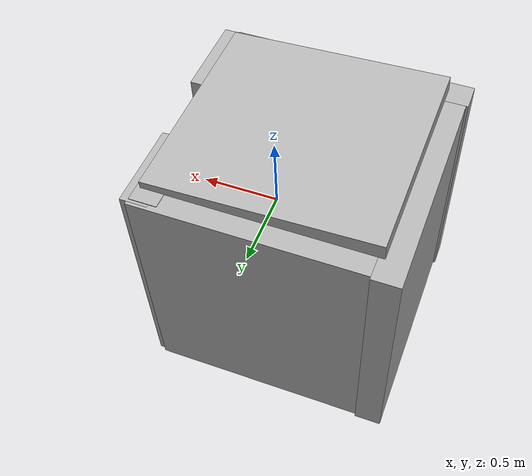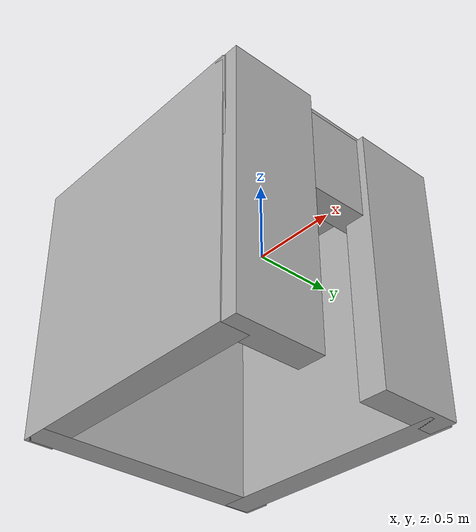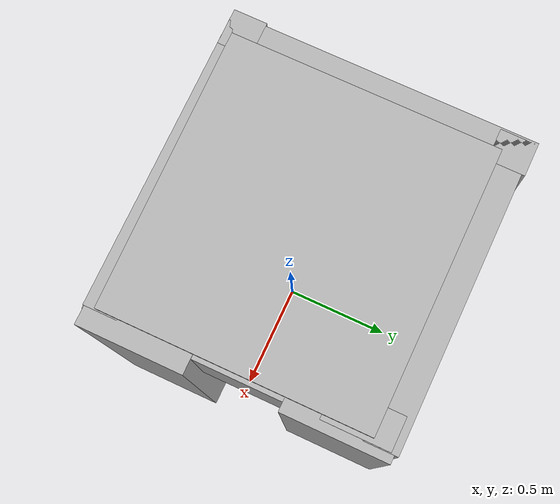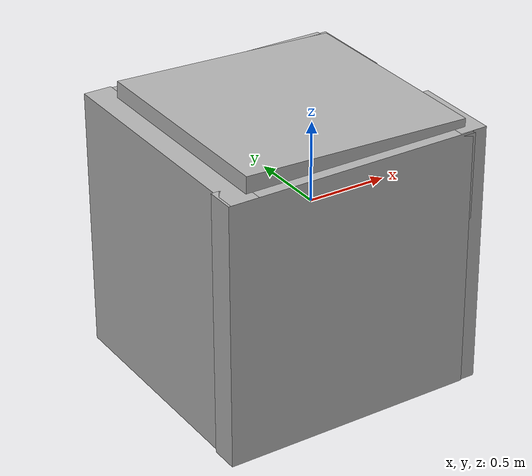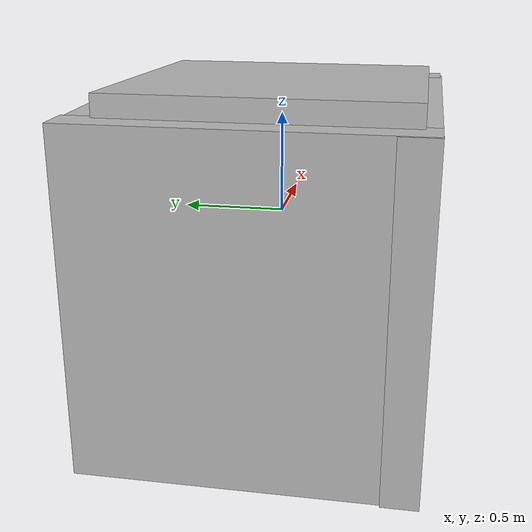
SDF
<?xml version='1.0'?>
<sdf version='1.6'>
  <model name='shelter'>
    <model name='Shelter'>
      <static>1</static>
      <link name='link_0'>
        <pose frame=''>-0.920119 0.015171 -0.190897 0 -0 0</pose>
        <inertial>
          <mass>0.432828</mass>
          <inertia>
            <ixx>0.182499</ixx>
            <ixy>0</ixy>
            <ixz>0</ixz>
            <iyy>0.0956056</iyy>
            <iyz>0</iyz>
            <izz>0.0890079</izz>
          </inertia>
          <pose frame=''>0 0 0 0 -0 0</pose>
        </inertial>
        <visual name='visual'>
          <pose frame=''>0 0 0 0 -0 0</pose>
          <geometry>
            <box>
              <size>0.171105 1.56146 1.61905</size>
            </box>
          </geometry>
          <material>
            <lighting>1</lighting>
            <script>
                <uri>model://shelter/materials/scripts/repeated.material</uri>
              <name>RepeatedTexture</name>
            </script>
            <ambient>0.3 0.3 0.3 1</ambient>
            <diffuse>0.7 0.7 0.7 1</diffuse>
            <specular>0.01 0.01 0.01 1</specular>
            <emissive>0 0 0 1</emissive>
          </material>
          <cast_shadows>1</cast_shadows>
          <transparency>0</transparency>
        </visual>
        <collision name='collision'>
          <laser_retro>0</laser_retro>
          <max_contacts>10</max_contacts>
          <pose frame=''>0 0 0 0 -0 0</pose>
          <geometry>
            <box>
              <size>0.171105 1.56146 1.61905</size>
            </box>
          </geometry>
          <surface>
            <friction>
              <ode>
                <mu>1</mu>
                <mu2>1</mu2>
                <fdir1>0 0 0</fdir1>
                <slip1>0</slip1>
                <slip2>0</slip2>
              </ode>
              <torsional>
                <coefficient>1</coefficient>
                <patch_radius>0</patch_radius>
                <surface_radius>0</surface_radius>
                <use_patch_radius>1</use_patch_radius>
                <ode>
                  <slip>0</slip>
                </ode>
              </torsional>
            </friction>
            <bounce>
              <restitution_coefficient>0</restitution_coefficient>
              <threshold>1e+06</threshold>
            </bounce>
            <contact>
              <collide_without_contact>0</collide_without_contact>
              <collide_without_contact_bitmask>1</collide_without_contact_bitmask>
              <collide_bitmask>1</collide_bitmask>
              <ode>
                <soft_cfm>0</soft_cfm>
                <soft_erp>0.2</soft_erp>
                <kp>1e+13</kp>
                <kd>1</kd>
                <max_vel>0.01</max_vel>
                <min_depth>0</min_depth>
              </ode>
              <bullet>
                <split_impulse>1</split_impulse>
                <split_impulse_penetration_threshold>-0.01</split_impulse_penetration_threshold>
                <soft_cfm>0</soft_cfm>
                <soft_erp>0.2</soft_erp>
                <kp>1e+13</kp>
                <kd>1</kd>
              </bullet>
            </contact>
          </surface>
        </collision>
      </link>
      <link name='link_0_clone'>
        <pose frame=''>-0.21624 0.6946 -0.190897 0 0 -1.57056</pose>
        <inertial>
          <mass>0.432828</mass>
          <inertia>
            <ixx>0.182499</ixx>
            <ixy>0</ixy>
            <ixz>0</ixz>
            <iyy>0.0956056</iyy>
            <iyz>0</iyz>
            <izz>0.0890079</izz>
          </inertia>
          <pose frame=''>0 0 0 0 -0 0</pose>
        </inertial>
        <visual name='visual'>
          <pose frame=''>0 0 0 0 -0 0</pose>
          <geometry>
            <box>
              <size>0.171105 1.56146 1.61905</size>
            </box>
          </geometry>
          <material>
            <lighting>1</lighting>
            <script>
                <uri>model://shelter/materials/scripts/repeated.material</uri>
              <name>RepeatedTexture</name>
            </script>
            <ambient>0.3 0.3 0.3 1</ambient>
            <diffuse>0.7 0.7 0.7 1</diffuse>
            <specular>0.01 0.01 0.01 1</specular>
            <emissive>0 0 0 1</emissive>
            <shader type='pixel'/>
          </material>
          <cast_shadows>1</cast_shadows>
          <transparency>0</transparency>
        </visual>
        <collision name='collision'>
          <laser_retro>0</laser_retro>
          <max_contacts>10</max_contacts>
          <pose frame=''>0 0 0 0 -0 0</pose>
          <geometry>
            <box>
              <size>0.171105 1.56146 1.61905</size>
            </box>
          </geometry>
          <surface>
            <friction>
              <ode>
                <mu>1</mu>
                <mu2>1</mu2>
                <fdir1>0 0 0</fdir1>
                <slip1>0</slip1>
                <slip2>0</slip2>
              </ode>
              <torsional>
                <coefficient>1</coefficient>
                <patch_radius>0</patch_radius>
                <surface_radius>0</surface_radius>
                <use_patch_radius>1</use_patch_radius>
                <ode>
                  <slip>0</slip>
                </ode>
              </torsional>
            </friction>
            <bounce>
              <restitution_coefficient>0</restitution_coefficient>
              <threshold>1e+06</threshold>
            </bounce>
            <contact>
              <collide_without_contact>0</collide_without_contact>
              <collide_without_contact_bitmask>1</collide_without_contact_bitmask>
              <collide_bitmask>1</collide_bitmask>
              <ode>
                <soft_cfm>0</soft_cfm>
                <soft_erp>0.2</soft_erp>
                <kp>1e+13</kp>
                <kd>1</kd>
                <max_vel>0.01</max_vel>
                <min_depth>0</min_depth>
              </ode>
              <bullet>
                <split_impulse>1</split_impulse>
                <split_impulse_penetration_threshold>-0.01</split_impulse_penetration_threshold>
                <soft_cfm>0</soft_cfm>
                <soft_erp>0.2</soft_erp>
                <kp>1e+13</kp>
                <kd>1</kd>
              </bullet>
            </contact>
          </surface>
        </collision>
      </link>
      <link name='link_0_clone_0'>
        <pose frame=''>-0.169587 -0.024586 0.608475 0 -1.53496 0</pose>
        <inertial>
          <mass>0.325147</mass>
          <inertia>
            <ixx>0.103015</ixx>
            <ixy>0</ixy>
            <ixz>0</ixz>
            <iyy>0.0544996</iyy>
            <iyz>0</iyz>
            <izz>0.0501041</izz>
          </inertia>
          <pose frame=''>0 0 0 0 -0 0</pose>
        </inertial>
        <visual name='visual'>
          <pose frame=''>0 0 0 0 -0 0</pose>
          <geometry>
            <box>
              <size>0.171105 1.34895 1.40786</size>
            </box>
          </geometry>
          <material>
            <lighting>1</lighting>
            <script>
                <uri>model://shelter/materials/scripts/repeated.material</uri>
              <name>RepeatedTexture</name>
            </script>
            <ambient>0.3 0.3 0.3 1</ambient>
            <diffuse>0.7 0.7 0.7 1</diffuse>
            <specular>0.01 0.01 0.01 1</specular>
            <emissive>0 0 0 1</emissive>
            <shader type='pixel'/>
          </material>
          <cast_shadows>1</cast_shadows>
          <transparency>0</transparency>
        </visual>
        <collision name='collision'>
          <laser_retro>0</laser_retro>
          <max_contacts>10</max_contacts>
          <pose frame=''>0 0 0 0 -0 0</pose>
          <geometry>
            <box>
              <size>0.171105 1.34895 1.40786</size>
            </box>
          </geometry>
          <surface>
            <friction>
              <ode>
                <mu>1</mu>
                <mu2>1</mu2>
                <fdir1>0 0 0</fdir1>
                <slip1>0</slip1>
                <slip2>0</slip2>
              </ode>
              <torsional>
                <coefficient>1</coefficient>
                <patch_radius>0</patch_radius>
                <surface_radius>0</surface_radius>
                <use_patch_radius>1</use_patch_radius>
                <ode>
                  <slip>0</slip>
                </ode>
              </torsional>
            </friction>
            <bounce>
              <restitution_coefficient>0</restitution_coefficient>
              <threshold>1e+06</threshold>
            </bounce>
            <contact>
              <collide_without_contact>0</collide_without_contact>
              <collide_without_contact_bitmask>1</collide_without_contact_bitmask>
              <collide_bitmask>1</collide_bitmask>
              <ode>
                <soft_cfm>0</soft_cfm>
                <soft_erp>0.2</soft_erp>
                <kp>1e+13</kp>
                <kd>1</kd>
                <max_vel>0.01</max_vel>
                <min_depth>0</min_depth>
              </ode>
              <bullet>
                <split_impulse>1</split_impulse>
                <split_impulse_penetration_threshold>-0.01</split_impulse_penetration_threshold>
                <soft_cfm>0</soft_cfm>
                <soft_erp>0.2</soft_erp>
                <kp>1e+13</kp>
                <kd>1</kd>
              </bullet>
            </contact>
          </surface>
        </collision>
      </link>
      <link name='link_0_clone_clone'>
        <pose frame=''>-0.239297 -0.680115 -0.190897 0 0 -1.57056</pose>
        <inertial>
          <mass>0.432828</mass>
          <inertia>
            <ixx>0.182499</ixx>
            <ixy>0</ixy>
            <ixz>0</ixz>
            <iyy>0.0956056</iyy>
            <iyz>0</iyz>
            <izz>0.0890079</izz>
          </inertia>
          <pose frame=''>0 0 0 0 -0 0</pose>
        </inertial>
        <visual name='visual'>
          <pose frame=''>0 0 0 0 -0 0</pose>
          <geometry>
            <box>
              <size>0.171105 1.56146 1.61905</size>
            </box>
          </geometry>
          <material>
            <lighting>1</lighting>
            <script>
                <uri>model://shelter/materials/scripts/repeated.material</uri>
              <name>RepeatedTexture</name>
            </script>
            <ambient>0.3 0.3 0.3 1</ambient>
            <diffuse>0.7 0.7 0.7 1</diffuse>
            <specular>0.01 0.01 0.01 1</specular>
            <emissive>0 0 0 1</emissive>
            <shader type='pixel'/>
          </material>
          <cast_shadows>1</cast_shadows>
          <transparency>0</transparency>
        </visual>
        <collision name='collision'>
          <laser_retro>0</laser_retro>
          <max_contacts>10</max_contacts>
          <pose frame=''>0 0 0 0 -0 0</pose>
          <geometry>
            <box>
              <size>0.171105 1.56146 1.61905</size>
            </box>
          </geometry>
          <surface>
            <friction>
              <ode>
                <mu>1</mu>
                <mu2>1</mu2>
                <fdir1>0 0 0</fdir1>
                <slip1>0</slip1>
                <slip2>0</slip2>
              </ode>
              <torsional>
                <coefficient>1</coefficient>
                <patch_radius>0</patch_radius>
                <surface_radius>0</surface_radius>
                <use_patch_radius>1</use_patch_radius>
                <ode>
                  <slip>0</slip>
                </ode>
              </torsional>
            </friction>
            <bounce>
              <restitution_coefficient>0</restitution_coefficient>
              <threshold>1e+06</threshold>
            </bounce>
            <contact>
              <collide_without_contact>0</collide_without_contact>
              <collide_without_contact_bitmask>1</collide_without_contact_bitmask>
              <collide_bitmask>1</collide_bitmask>
              <ode>
                <soft_cfm>0</soft_cfm>
                <soft_erp>0.2</soft_erp>
                <kp>1e+13</kp>
                <kd>1</kd>
                <max_vel>0.01</max_vel>
                <min_depth>0</min_depth>
              </ode>
              <bullet>
                <split_impulse>1</split_impulse>
                <split_impulse_penetration_threshold>-0.01</split_impulse_penetration_threshold>
                <soft_cfm>0</soft_cfm>
                <soft_erp>0.2</soft_erp>
                <kp>1e+13</kp>
                <kd>1</kd>
              </bullet>
            </contact>
          </surface>
        </collision>
      </link>
      <link name='link_0_clone_clone_0'>
        <pose frame=''>0.550896 -0.490372 -0.190897 0 0 -0.002516</pose>
        <inertial>
          <mass>0.148606</mass>
          <inertia>
            <ixx>0.0360216</ixx>
            <ixy>0</ixy>
            <ixz>0</ixz>
            <iyy>0.032825</iyy>
            <iyz>0</iyz>
            <izz>0.0039226</izz>
          </inertia>
          <pose frame=''>0 0 0 0 -0 0</pose>
        </inertial>
        <visual name='visual'>
          <pose frame=''>0 0 0 0 -0 0</pose>
          <geometry>
            <box>
              <size>0.171105 0.536108 1.61905</size>
            </box>
          </geometry>
          <material>
            <lighting>1</lighting>
            <script>
                <uri>model://shelter/materials/scripts/repeated.material</uri>
              <name>RepeatedTexture</name>
            </script>
            <ambient>0.3 0.3 0.3 1</ambient>
            <diffuse>0.7 0.7 0.7 1</diffuse>
            <specular>0.01 0.01 0.01 1</specular>
            <emissive>0 0 0 1</emissive>
            <shader type='pixel'/>
          </material>
          <cast_shadows>1</cast_shadows>
          <transparency>0</transparency>
        </visual>
        <collision name='collision'>
          <laser_retro>0</laser_retro>
          <max_contacts>10</max_contacts>
          <pose frame=''>0 0 0 0 -0 0</pose>
          <geometry>
            <box>
              <size>0.171105 0.536108 1.61905</size>
            </box>
          </geometry>
          <surface>
            <friction>
              <ode>
                <mu>1</mu>
                <mu2>1</mu2>
                <fdir1>0 0 0</fdir1>
                <slip1>0</slip1>
                <slip2>0</slip2>
              </ode>
              <torsional>
                <coefficient>1</coefficient>
                <patch_radius>0</patch_radius>
                <surface_radius>0</surface_radius>
                <use_patch_radius>1</use_patch_radius>
                <ode>
                  <slip>0</slip>
                </ode>
              </torsional>
            </friction>
            <bounce>
              <restitution_coefficient>0</restitution_coefficient>
              <threshold>1e+06</threshold>
            </bounce>
            <contact>
              <collide_without_contact>0</collide_without_contact>
              <collide_without_contact_bitmask>1</collide_without_contact_bitmask>
              <collide_bitmask>1</collide_bitmask>
              <ode>
                <soft_cfm>0</soft_cfm>
                <soft_erp>0.2</soft_erp>
                <kp>1e+13</kp>
                <kd>1</kd>
                <max_vel>0.01</max_vel>
                <min_depth>0</min_depth>
              </ode>
              <bullet>
                <split_impulse>1</split_impulse>
                <split_impulse_penetration_threshold>-0.01</split_impulse_penetration_threshold>
                <soft_cfm>0</soft_cfm>
                <soft_erp>0.2</soft_erp>
                <kp>1e+13</kp>
                <kd>1</kd>
              </bullet>
            </contact>
          </surface>
        </collision>
      </link>
      <link name='link_0_clone_clone_0_clone'>
        <pose frame=''>0.521489 0.493157 -0.190897 0 0 -0.002516</pose>
        <inertial>
          <mass>0.148606</mass>
          <inertia>
            <ixx>0.0360216</ixx>
            <ixy>0</ixy>
            <ixz>0</ixz>
            <iyy>0.032825</iyy>
            <iyz>0</iyz>
            <izz>0.0039226</izz>
          </inertia>
          <pose frame=''>0 0 0 0 -0 0</pose>
        </inertial>
        <visual name='visual'>
          <pose frame=''>0 0 0 0 -0 0</pose>
          <geometry>
            <box>
              <size>0.171105 0.536108 1.61905</size>
            </box>
          </geometry>
          <material>
            <lighting>1</lighting>
            <script>
                <uri>model://shelter/materials/scripts/repeated.material</uri>
              <name>RepeatedTexture</name>
            </script>
            <ambient>0.3 0.3 0.3 1</ambient>
            <diffuse>0.7 0.7 0.7 1</diffuse>
            <specular>0.01 0.01 0.01 1</specular>
            <emissive>0 0 0 1</emissive>
            <shader type='pixel'/>
          </material>
          <cast_shadows>1</cast_shadows>
          <transparency>0</transparency>
        </visual>
        <collision name='collision'>
          <laser_retro>0</laser_retro>
          <max_contacts>10</max_contacts>
          <pose frame=''>0 0 0 0 -0 0</pose>
          <geometry>
            <box>
              <size>0.171105 0.536108 1.61905</size>
            </box>
          </geometry>
          <surface>
            <friction>
              <ode>
                <mu>1</mu>
                <mu2>1</mu2>
                <fdir1>0 0 0</fdir1>
                <slip1>0</slip1>
                <slip2>0</slip2>
              </ode>
              <torsional>
                <coefficient>1</coefficient>
                <patch_radius>0</patch_radius>
                <surface_radius>0</surface_radius>
                <use_patch_radius>1</use_patch_radius>
                <ode>
                  <slip>0</slip>
                </ode>
              </torsional>
            </friction>
            <bounce>
              <restitution_coefficient>0</restitution_coefficient>
              <threshold>1e+06</threshold>
            </bounce>
            <contact>
              <collide_without_contact>0</collide_without_contact>
              <collide_without_contact_bitmask>1</collide_without_contact_bitmask>
              <collide_bitmask>1</collide_bitmask>
              <ode>
                <soft_cfm>0</soft_cfm>
                <soft_erp>0.2</soft_erp>
                <kp>1e+13</kp>
                <kd>1</kd>
                <max_vel>0.01</max_vel>
                <min_depth>0</min_depth>
              </ode>
              <bullet>
                <split_impulse>1</split_impulse>
                <split_impulse_penetration_threshold>-0.01</split_impulse_penetration_threshold>
                <soft_cfm>0</soft_cfm>
                <soft_erp>0.2</soft_erp>
                <kp>1e+13</kp>
                <kd>1</kd>
              </bullet>
            </contact>
          </surface>
        </collision>
      </link>
      <link name='link_0_clone_clone_0_clone_clone'>
        <pose frame=''>0.472859 -0.007857 0.346011 -1.55971 -0 -0.002516</pose>
        <inertial>
          <mass>0.138545</mass>
          <inertia>
            <ixx>0.0296237</ixx>
            <ixy>0</ixy>
            <ixz>0</ixz>
            <iyy>0.0266435</iyy>
            <iyz>0</iyz>
            <izz>0.00365703</izz>
          </inertia>
          <pose frame=''>0 0 0 0 -0 0</pose>
        </inertial>
        <visual name='visual'>
          <pose frame=''>0 0 0 0 -0 0</pose>
          <geometry>
            <box>
              <size>0.171105 0.536108 1.50944</size>
            </box>
          </geometry>
          <material>
            <lighting>1</lighting>
            <script>
                <uri>model://shelter/materials/scripts/repeated.material</uri>
              <name>RepeatedTexture</name>
            </script>
            <ambient>0.3 0.3 0.3 1</ambient>
            <diffuse>0.7 0.7 0.7 1</diffuse>
            <specular>0.01 0.01 0.01 1</specular>
            <emissive>0 0 0 1</emissive>
            <shader type='pixel'/>
          </material>
          <cast_shadows>1</cast_shadows>
          <transparency>0</transparency>
        </visual>
        <collision name='collision'>
          <laser_retro>0</laser_retro>
          <max_contacts>10</max_contacts>
          <pose frame=''>0 0 0 0 -0 0</pose>
          <geometry>
            <box>
              <size>0.171105 0.536108 1.50944</size>
            </box>
          </geometry>
          <surface>
            <friction>
              <ode>
                <mu>1</mu>
                <mu2>1</mu2>
                <fdir1>0 0 0</fdir1>
                <slip1>0</slip1>
                <slip2>0</slip2>
              </ode>
              <torsional>
                <coefficient>1</coefficient>
                <patch_radius>0</patch_radius>
                <surface_radius>0</surface_radius>
                <use_patch_radius>1</use_patch_radius>
                <ode>
                  <slip>0</slip>
                </ode>
              </torsional>
            </friction>
            <bounce>
              <restitution_coefficient>0</restitution_coefficient>
              <threshold>1e+06</threshold>
            </bounce>
            <contact>
              <collide_without_contact>0</collide_without_contact>
              <collide_without_contact_bitmask>1</collide_without_contact_bitmask>
              <collide_bitmask>1</collide_bitmask>
              <ode>
                <soft_cfm>0</soft_cfm>
                <soft_erp>0.2</soft_erp>
                <kp>1e+13</kp>
                <kd>1</kd>
                <max_vel>0.01</max_vel>
                <min_depth>0</min_depth>
              </ode>
              <bullet>
                <split_impulse>1</split_impulse>
                <split_impulse_penetration_threshold>-0.01</split_impulse_penetration_threshold>
                <soft_cfm>0</soft_cfm>
                <soft_erp>0.2</soft_erp>
                <kp>1e+13</kp>
                <kd>1</kd>
              </bullet>
            </contact>
          </surface>
        </collision>
      </link>
      <static>0</static>
      <allow_auto_disable>1</allow_auto_disable>
      <pose frame=''>-0 1e-06 3e-06 0 -0 0</pose>
    </model>
    <static>1</static>
    <allow_auto_disable>1</allow_auto_disable>
  </model>
</sdf>
